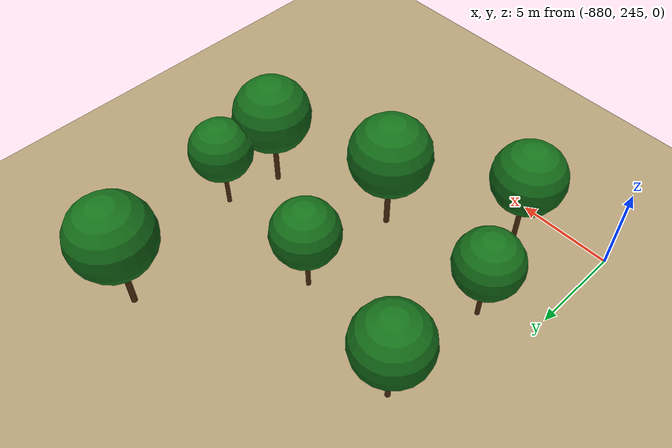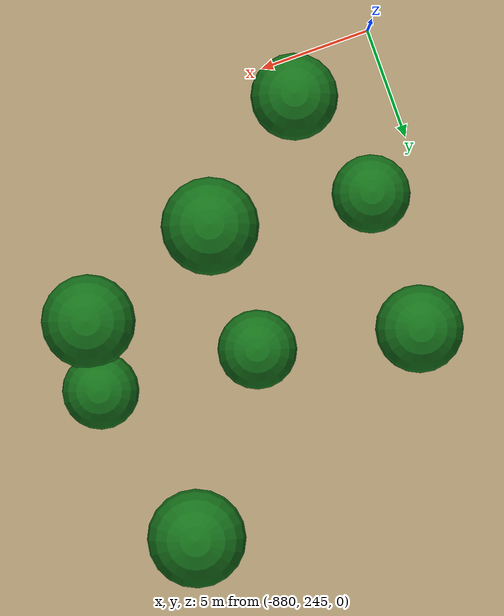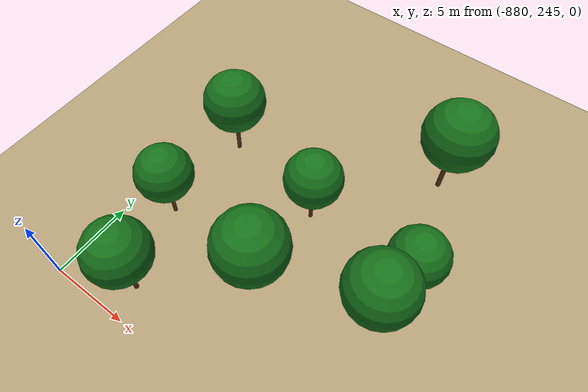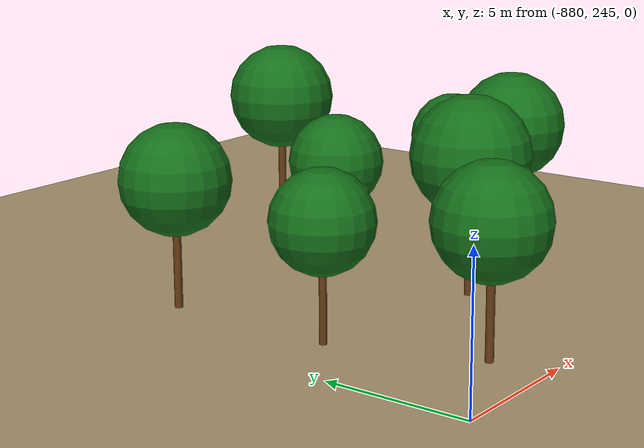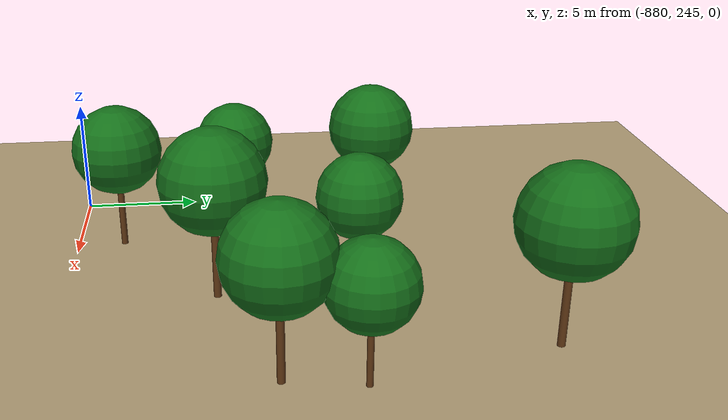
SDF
<sdf version="1.9">
 <world name="crossroad_world">
  <model name="ground_plane">
   <static>true</static>
   <pose>0 0 -0.05 0 0 0</pose>
   <link name="link">
    <collision name="collision">
     <geometry><plane><normal>0 0 1</normal><size>10000 10000</size></plane></geometry>
    </collision>
    <visual name="visual">
     <geometry><plane><normal>0 0 1</normal><size>15000 15000</size></plane></geometry>
     <material><ambient>0.68 0.60 0.45 1</ambient><diffuse>0.68 0.60 0.45 1</diffuse></material>
    </visual>
   </link>
  </model>
  <model name="tree_279">
   <static>true</static>
   <pose>-875.764 246.975 0 0 0 0</pose>
   <link name="link">
    <visual name="trunk">
     <pose>0 0 1.593 0 0 0</pose>
     <geometry><cylinder><radius>0.139</radius><length>3.186</length></cylinder></geometry>
     <material><ambient>0.38 0.22 0.08 1</ambient><diffuse>0.38 0.22 0.08 1</diffuse></material>
    </visual>
    <visual name="canopy">
     <pose>0 0 4.416 0 0 0</pose>
     <geometry><sphere><radius>1.892</radius></sphere></geometry>
     <material><ambient>0.08 0.44 0.10 1</ambient><diffuse>0.08 0.44 0.10 1</diffuse></material>
    </visual>
    <collision name="col">
     <pose>0 0 1.593 0 0 0</pose>
     <geometry><cylinder><radius>0.139</radius><length>3.186</length></cylinder></geometry>
    </collision>
   </link>
  </model>
  <model name="tree_280">
   <static>true</static>
   <pose>-877.491 252.013 0 0 0 0</pose>
   <link name="link">
    <visual name="trunk">
     <pose>0 0 1.438 0 0 0</pose>
     <geometry><cylinder><radius>0.126</radius><length>2.877</length></cylinder></geometry>
     <material><ambient>0.38 0.22 0.08 1</ambient><diffuse>0.38 0.22 0.08 1</diffuse></material>
    </visual>
    <visual name="canopy">
     <pose>0 0 3.987 0 0 0</pose>
     <geometry><sphere><radius>1.708</radius></sphere></geometry>
     <material><ambient>0.08 0.44 0.10 1</ambient><diffuse>0.08 0.44 0.10 1</diffuse></material>
    </visual>
    <collision name="col">
     <pose>0 0 1.438 0 0 0</pose>
     <geometry><cylinder><radius>0.126</radius><length>2.877</length></cylinder></geometry>
    </collision>
   </link>
  </model>
  <model name="tree_281">
   <static>true</static>
   <pose>-877.475 258.190 0 0 0 0</pose>
   <link name="link">
    <visual name="trunk">
     <pose>0 0 1.606 0 0 0</pose>
     <geometry><cylinder><radius>0.140</radius><length>3.211</length></cylinder></geometry>
     <material><ambient>0.38 0.22 0.08 1</ambient><diffuse>0.38 0.22 0.08 1</diffuse></material>
    </visual>
    <visual name="canopy">
     <pose>0 0 4.451 0 0 0</pose>
     <geometry><sphere><radius>1.907</radius></sphere></geometry>
     <material><ambient>0.08 0.44 0.10 1</ambient><diffuse>0.08 0.44 0.10 1</diffuse></material>
    </visual>
    <collision name="col">
     <pose>0 0 1.606 0 0 0</pose>
     <geometry><cylinder><radius>0.140</radius><length>3.211</length></cylinder></geometry>
    </collision>
   </link>
  </model>
  <model name="tree_282">
   <static>true</static>
   <pose>-870.475 251.028 0 0 0 0</pose>
   <link name="link">
    <visual name="trunk">
     <pose>0 0 1.783 0 0 0</pose>
     <geometry><cylinder><radius>0.156</radius><length>3.566</length></cylinder></geometry>
     <material><ambient>0.38 0.22 0.08 1</ambient><diffuse>0.38 0.22 0.08 1</diffuse></material>
    </visual>
    <visual name="canopy">
     <pose>0 0 4.942 0 0 0</pose>
     <geometry><sphere><radius>2.117</radius></sphere></geometry>
     <material><ambient>0.08 0.44 0.10 1</ambient><diffuse>0.08 0.44 0.10 1</diffuse></material>
    </visual>
    <collision name="col">
     <pose>0 0 1.783 0 0 0</pose>
     <geometry><cylinder><radius>0.156</radius><length>3.566</length></cylinder></geometry>
    </collision>
   </link>
  </model>
  <model name="tree_283">
   <static>true</static>
   <pose>-870.608 256.692 0 0 0 0</pose>
   <link name="link">
    <visual name="trunk">
     <pose>0 0 1.450 0 0 0</pose>
     <geometry><cylinder><radius>0.127</radius><length>2.901</length></cylinder></geometry>
     <material><ambient>0.38 0.22 0.08 1</ambient><diffuse>0.38 0.22 0.08 1</diffuse></material>
    </visual>
    <visual name="canopy">
     <pose>0 0 4.020 0 0 0</pose>
     <geometry><sphere><radius>1.722</radius></sphere></geometry>
     <material><ambient>0.08 0.44 0.10 1</ambient><diffuse>0.08 0.44 0.10 1</diffuse></material>
    </visual>
    <collision name="col">
     <pose>0 0 1.450 0 0 0</pose>
     <geometry><cylinder><radius>0.127</radius><length>2.901</length></cylinder></geometry>
    </collision>
   </link>
  </model>
  <model name="tree_285">
   <static>true</static>
   <pose>-864.179 253.123 0 0 0 0</pose>
   <link name="link">
    <visual name="trunk">
     <pose>0 0 1.715 0 0 0</pose>
     <geometry><cylinder><radius>0.150</radius><length>3.430</length></cylinder></geometry>
     <material><ambient>0.38 0.22 0.08 1</ambient><diffuse>0.38 0.22 0.08 1</diffuse></material>
    </visual>
    <visual name="canopy">
     <pose>0 0 4.753 0 0 0</pose>
     <geometry><sphere><radius>2.036</radius></sphere></geometry>
     <material><ambient>0.08 0.44 0.10 1</ambient><diffuse>0.08 0.44 0.10 1</diffuse></material>
    </visual>
    <collision name="col">
     <pose>0 0 1.715 0 0 0</pose>
     <geometry><cylinder><radius>0.150</radius><length>3.430</length></cylinder></geometry>
    </collision>
   </link>
  </model>
  <model name="tree_286">
   <static>true</static>
   <pose>-863.641 256.104 0 0 0 0</pose>
   <link name="link">
    <visual name="trunk">
     <pose>0 0 1.406 0 0 0</pose>
     <geometry><cylinder><radius>0.123</radius><length>2.812</length></cylinder></geometry>
     <material><ambient>0.38 0.22 0.08 1</ambient><diffuse>0.38 0.22 0.08 1</diffuse></material>
    </visual>
    <visual name="canopy">
     <pose>0 0 3.898 0 0 0</pose>
     <geometry><sphere><radius>1.670</radius></sphere></geometry>
     <material><ambient>0.08 0.44 0.10 1</ambient><diffuse>0.08 0.44 0.10 1</diffuse></material>
    </visual>
    <collision name="col">
     <pose>0 0 1.406 0 0 0</pose>
     <geometry><cylinder><radius>0.123</radius><length>2.812</length></cylinder></geometry>
    </collision>
   </link>
  </model>
  <model name="tree_287">
   <static>true</static>
   <pose>-865.448 263.436 0 0 0 0</pose>
   <link name="link">
    <visual name="trunk">
     <pose>0 0 1.793 0 0 0</pose>
     <geometry><cylinder><radius>0.157</radius><length>3.587</length></cylinder></geometry>
     <material><ambient>0.38 0.22 0.08 1</ambient><diffuse>0.38 0.22 0.08 1</diffuse></material>
    </visual>
    <visual name="canopy">
     <pose>0 0 4.971 0 0 0</pose>
     <geometry><sphere><radius>2.129</radius></sphere></geometry>
     <material><ambient>0.08 0.44 0.10 1</ambient><diffuse>0.08 0.44 0.10 1</diffuse></material>
    </visual>
    <collision name="col">
     <pose>0 0 1.793 0 0 0</pose>
     <geometry><cylinder><radius>0.157</radius><length>3.587</length></cylinder></geometry>
    </collision>
   </link>
  </model>
 </world>
</sdf>
